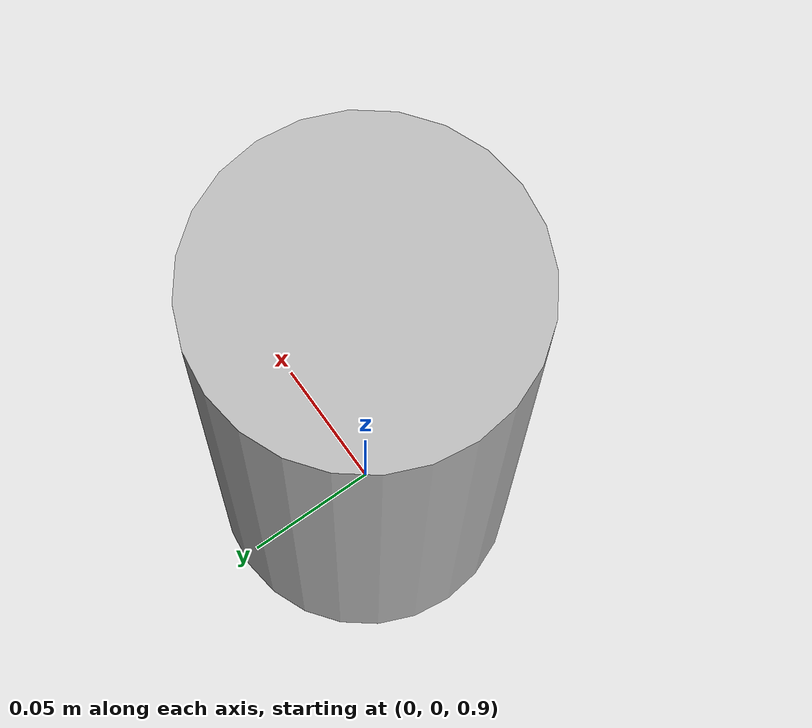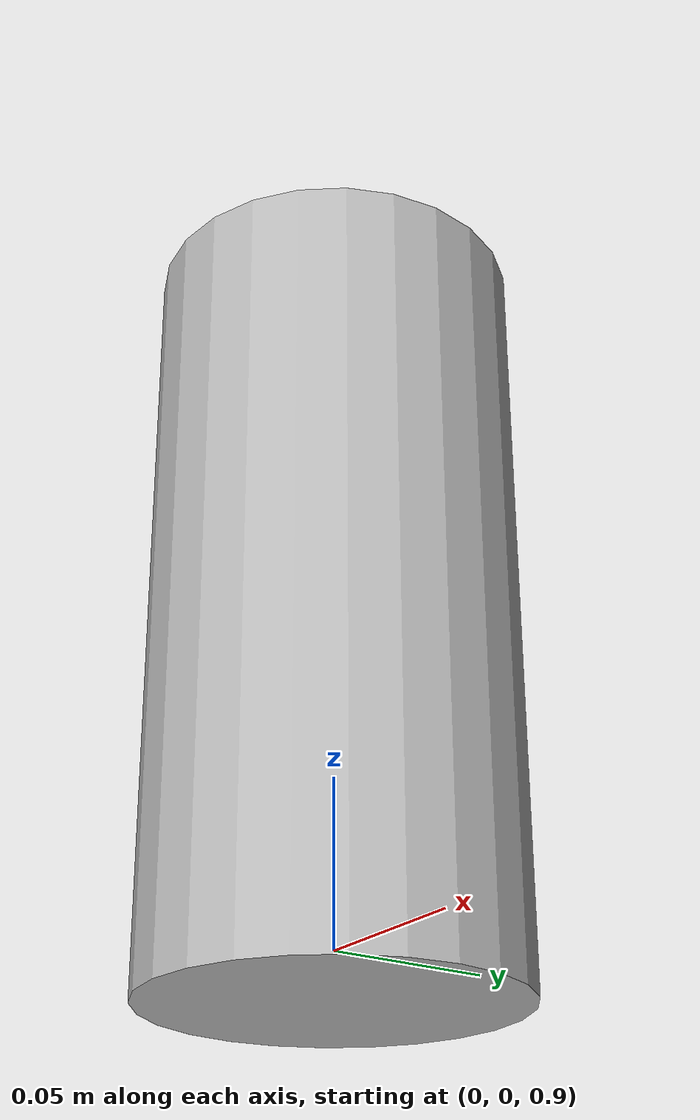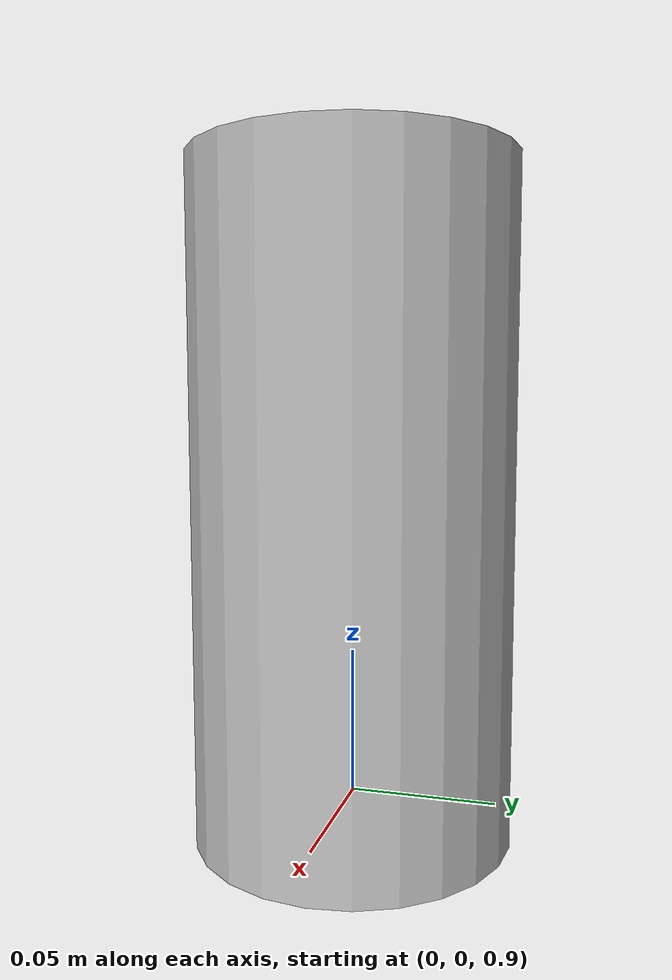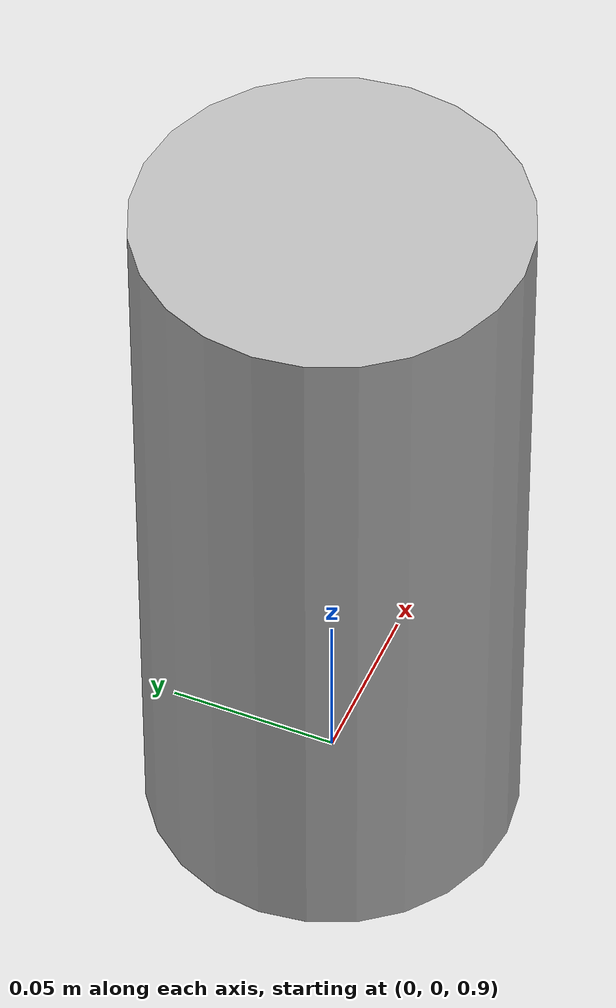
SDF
<?xml version="1.0" ?>
<sdf version="1.5">
  <model name="beer_copy">
    <static>false</static>
    <link name="link">
      <pose>0 0 1.0 0 0 0</pose>
      <gravity>true</gravity>
      <inertial>
        <mass>0.390</mass>
        <inertia>
          <ixx>0.00058</ixx>
          <ixy>0</ixy>
          <ixz>0</ixz>
          <iyy>0.00058</iyy>
          <iyz>0</iyz>
          <izz>0.00019</izz>
        </inertia>
      </inertial>
      <collision name="collision">
        <geometry>
          <cylinder>
            <radius>0.055</radius>
            <length>0.230</length>
          </cylinder>
        </geometry>
        <surface>
          <friction>
            <ode>
              <mu>1.0</mu>
              <mu2>1.0</mu2>
            </ode>
          </friction>
        </surface>
      </collision>
      <visual name="visual">
        <geometry>
          <cylinder>
            <radius>0.055</radius>
            <length>0.230</length>
          </cylinder>
        </geometry>
        <material>
          <script>
            <uri>model://beer/materials/scripts</uri>
            <uri>model://beer/materials/textures</uri>
            <name>Beer/Diffuse</name>
          </script>
        </material>
      </visual>
    </link>
  </model>
</sdf>
